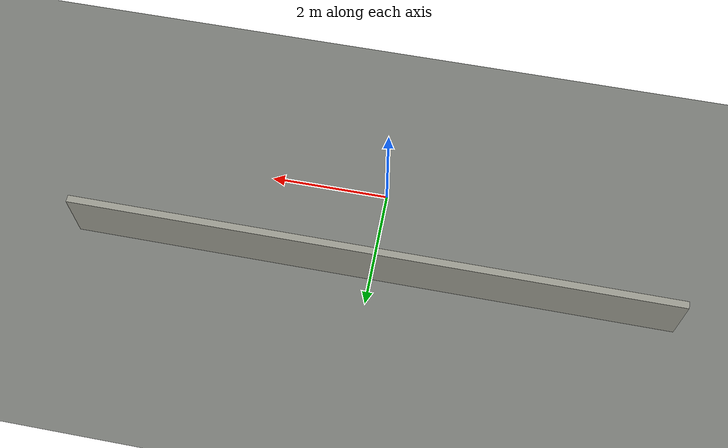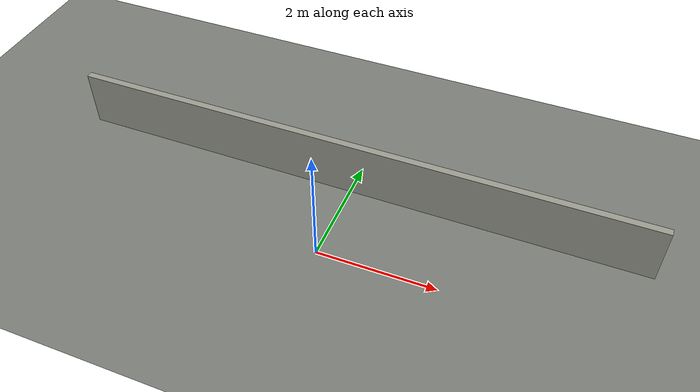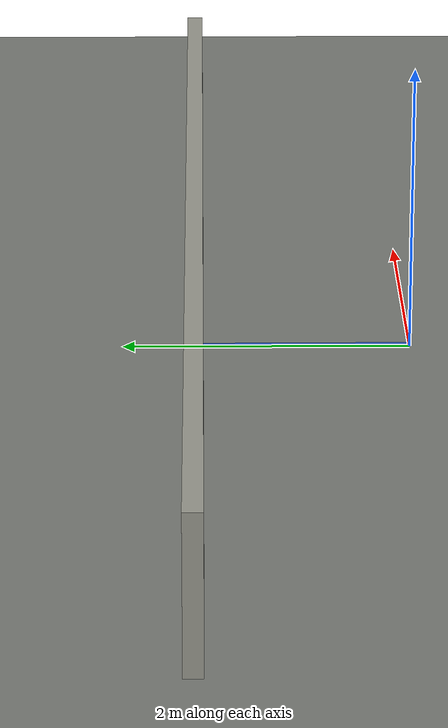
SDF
<?xml version="1.0"?>
<sdf version="1.9">
  <world name="brover_e5_left_wall">
    <plugin filename="gz-sim-physics-system" name="gz::sim::systems::Physics"/>
    <plugin filename="gz-sim-user-commands-system" name="gz::sim::systems::UserCommands"/>
    <plugin filename="gz-sim-scene-broadcaster-system" name="gz::sim::systems::SceneBroadcaster"/>
    <plugin filename="gz-sim-sensors-system" name="gz::sim::systems::Sensors">
      <render_engine>ogre2</render_engine>
    </plugin>

    <gravity>0 0 -9.81</gravity>
    <atmosphere type="adiabatic"/>
    <scene>
      <ambient>0.34 0.34 0.34 1</ambient>
      <background>0.68 0.71 0.74 1</background>
      <shadows>true</shadows>
    </scene>

    <light name="sun" type="directional">
      <cast_shadows>true</cast_shadows>
      <pose>0 0 10 0 0 0</pose>
      <diffuse>0.95 0.95 0.90 1</diffuse>
      <specular>0.12 0.12 0.12 1</specular>
      <direction>-0.45 0.25 -0.86</direction>
    </light>

    <model name="ground_plane">
      <static>true</static>
      <link name="link">
        <collision name="collision">
          <geometry>
            <plane>
              <normal>0 0 1</normal>
              <size>10 8</size>
            </plane>
          </geometry>
          <surface>
            <friction>
              <ode>
                <mu>1.0</mu>
                <mu2>1.0</mu2>
              </ode>
            </friction>
          </surface>
        </collision>
        <visual name="visual">
          <geometry>
            <plane>
              <normal>0 0 1</normal>
              <size>10 8</size>
            </plane>
          </geometry>
          <material>
            <ambient>0.47 0.48 0.46 1</ambient>
            <diffuse>0.47 0.48 0.46 1</diffuse>
            <specular>0.02 0.02 0.02 1</specular>
          </material>
        </visual>
      </link>
    </model>

    <model name="left_parallel_wall">
      <static>true</static>
      <pose>0 1.5 0.5 0 0 0</pose>
      <link name="link">
        <collision name="collision">
          <geometry>
            <box>
              <size>10.0 0.12 1.0</size>
            </box>
          </geometry>
          <surface>
            <friction>
              <ode>
                <mu>1.0</mu>
                <mu2>1.0</mu2>
              </ode>
            </friction>
          </surface>
        </collision>
        <visual name="visual">
          <geometry>
            <box>
              <size>10.0 0.12 1.0</size>
            </box>
          </geometry>
          <material>
            <ambient>0.60 0.60 0.56 1</ambient>
            <diffuse>0.60 0.60 0.56 1</diffuse>
            <specular>0.04 0.04 0.04 1</specular>
          </material>
        </visual>
      </link>
    </model>

    <model name="wall_distance_marker">
      <static>true</static>
      <pose>0 0.75 0.012 0 0 0</pose>
      <link name="link">
        <visual name="visual">
          <geometry>
            <box>
              <size>0.04 1.5 0.014</size>
            </box>
          </geometry>
          <material>
            <diffuse>0.20 0.38 0.78 1</diffuse>
          </material>
        </visual>
      </link>
    </model>
  </world>
</sdf>
